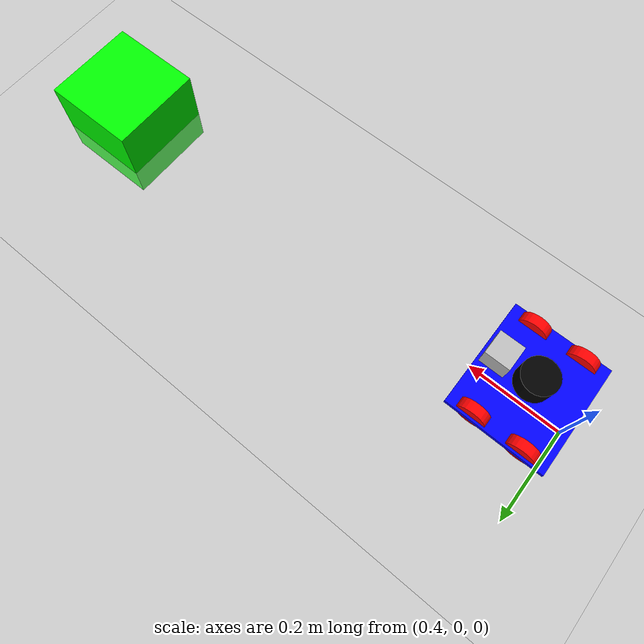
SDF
<?xml version="1.0" ?>
<sdf version="1.8">

  <!--
    Определяем мир (world) под названием "Moving_robot".
    Внутри указываем параметры физики, плагины для симуляции, освещение (sun) и объекты (models).
  -->
  <world name="Moving_robot">

    <physics name="1ms" type="ignored">
      <max_step_size>0.001</max_step_size>
      <real_time_factor>1.0</real_time_factor>
    </physics>

    <plugin filename="gz-sim-physics-system" name="gz::sim::systems::Physics"/>
    <plugin filename="gz-sim-user-commands-system" name="gz::sim::systems::UserCommands"/>
    <plugin filename="gz-sim-scene-broadcaster-system" name="gz::sim::systems::SceneBroadcaster"/>
    <plugin filename="gz-sim-sensors-system"
	    name="gz::sim::systems::Sensors">
    <render_engine>ogre2</render_engine>
    </plugin>

    <!--
      Настраиваем источник света "sun" (солнечный свет) с заданным направлением,
      интенсивностью (diffuse, specular) и другими параметрами.
    -->
    <light type="directional" name="sun">
      <cast_shadows>true</cast_shadows>
      <pose>0 0 10 0 0 0</pose>
      <diffuse>0.8 0.8 0.8 1</diffuse>
      <specular>0.2 0.2 0.2 1</specular>
      <attenuation>
        <range>1000</range>
        <constant>0.9</constant>
        <linear>0.01</linear>
        <quadratic>0.001</quadratic>
      </attenuation>
      <direction>-0.5 0.1 -0.9</direction>
    </light>

    <!--
      Создаём "землю" (ground_plane) — большая плоскость для пола.
      static=true означает, что объект не участвует в движении, он статичен.
    -->
    <model name="ground_plane">
      <static>true</static>
      <link name="link">
        <collision name="collision">
          <geometry>
            <plane>
              <normal>0 0 1</normal>
            </plane>
          </geometry>
        </collision>
        <visual name="visual">
          <geometry>
            <plane>
              <normal>0 0 1</normal>
              <size>100 100</size>
            </plane>
          </geometry>
          <material>
            <ambient>0.8 0.8 0.8 1</ambient>
            <diffuse>0.8 0.8 0.8 1</diffuse>
            <specular>0.8 0.8 0.8 1</specular>
          </material>
        </visual>
      </link>
    </model>

    <!--
      Модель робота: "my_robot". У него корневым звеном (canonical_link) выступает "chassis".
      pose relative_to='world' означает, что робот будет размещён в абсолютных координатах.
    -->
    <model name='my_robot' canonical_link='chassis'>
      <pose relative_to='world'>0 0 0 0 0 0</pose>

      <link name='chassis'>
        <pose relative_to='__model__'>0.5 0 0.1 0 0 0</pose>
        <inertial>
          <mass>3</mass>
          <inertia>
            <ixx>0.126164</ixx>
            <ixy>0</ixy>
            <ixz>0</ixz>
            <iyy>0.416519</iyy>
            <iyz>0</iyz>
            <izz>0.481014</izz>
          </inertia>
        </inertial>
        <visual name='visual'>
          <geometry>
            <box>
              <size>0.2 0.23 0.01</size>
            </box>
          </geometry>
          <material>
            <ambient>0.0 0.0 1.0 1</ambient>
            <diffuse>0.0 0.0 1.0 1</diffuse>
            <specular>0.0 0.0 1.0 1</specular>
          </material>
        </visual>
        <collision name='collision'>
          <!-- collision важна для реакций физики (сталкивание с объектами) -->
          <geometry>
            <box>
              <size>0.2 0.16 0.01</size>
            </box>
          </geometry>
        </collision>
      </link>

      <link name='left_wheel'>
        <pose relative_to="chassis">0.05 0.10 0 -1.5707 0 0</pose>
        <inertial>
          <mass>0.2</mass>
          <inertia>
            <ixx>0.145833</ixx>
            <ixy>0</ixy>
            <ixz>0</ixz>
            <iyy>0.145833</iyy>
            <iyz>0</iyz>
            <izz>0.125</izz>
          </inertia>
        </inertial>
        <visual name='visual'>
          <geometry>
            <cylinder>
              <radius>0.03</radius>
              <length>0.02</length>
            </cylinder>
          </geometry>
          <material>
            <ambient>1.0 0.0 0.0 1</ambient>
            <diffuse>1.0 0.0 0.0 1</diffuse>
            <specular>1.0 0.0 0.0 1</specular>
          </material>
        </visual>
        <collision name='collision'>
          <geometry>
            <cylinder>
              <radius>0.03</radius>
              <length>0.02</length>
            </cylinder>
          </geometry>
        </collision>
      </link>

      <link name='left_wheel_b'>
        <pose relative_to="chassis">-0.05 0.10 0 -1.5707 0 0</pose>
        <inertial>
          <mass>0.2</mass>
          <inertia>
            <ixx>0.145833</ixx>
            <ixy>0</ixy>
            <ixz>0</ixz>
            <iyy>0.145833</iyy>
            <iyz>0</iyz>
            <izz>0.125</izz>
          </inertia>
        </inertial>
        <visual name='visual'>
          <geometry>
            <cylinder>
              <radius>0.03</radius>
              <length>0.02</length>
            </cylinder>
          </geometry>
          <material>
            <ambient>1.0 0.0 0.0 1</ambient>
            <diffuse>1.0 0.0 0.0 1</diffuse>
            <specular>1.0 0.0 0.0 1</specular>
          </material>
        </visual>
        <collision name='collision'>
          <geometry>
            <cylinder>
              <radius>0.03</radius>
              <length>0.02</length>
            </cylinder>
          </geometry>
        </collision>
      </link>

      <!--
        Правое колесо (right_wheel).
        Аналогично левому, только y=-0.10.
      -->
      <link name='right_wheel'>
        <pose relative_to="chassis">0.05 -0.10 0 -1.5707 0 0</pose>
        <inertial>
          <mass>0.2</mass>
          <inertia>
            <ixx>0.145833</ixx>
            <ixy>0</ixy>
            <ixz>0</ixz>
            <iyy>0.145833</iyy>
            <iyz>0</iyz>
            <izz>0.125</izz>
          </inertia>
        </inertial>
        <visual name='visual'>
          <geometry>
            <cylinder>
              <radius>0.03</radius>
              <length>0.02</length>
            </cylinder>
          </geometry>
          <material>
            <ambient>1.0 0.0 0.0 1</ambient>
            <diffuse>1.0 0.0 0.0 1</diffuse>
            <specular>1.0 0.0 0.0 1</specular>
          </material>
        </visual>
        <collision name='collision'>
          <geometry>
            <cylinder>
              <radius>0.03</radius>
              <length>0.02</length>
            </cylinder>
          </geometry>
        </collision>
      </link>

      <!--
        Правое колесо (right_wheel).
        Аналогично левому, только y=-0.10.
      -->
      <link name='right_wheel_b'>
        <pose relative_to="chassis">-0.05 -0.10 0 -1.5707 0 0</pose>
        <inertial>
          <mass>0.2</mass>
          <inertia>
            <ixx>0.145833</ixx>
            <ixy>0</ixy>
            <ixz>0</ixz>
            <iyy>0.145833</iyy>
            <iyz>0</iyz>
            <izz>0.125</izz>
          </inertia>
        </inertial>
        <visual name='visual'>
          <geometry>
            <cylinder>
              <radius>0.03</radius>
              <length>0.02</length>
            </cylinder>
          </geometry>
          <material>
            <ambient>1.0 0.0 0.0 1</ambient>
            <diffuse>1.0 0.0 0.0 1</diffuse>
            <specular>1.0 0.0 0.0 1</specular>
          </material>
        </visual>
        <collision name='collision'>
          <geometry>
            <cylinder>
              <radius>0.03</radius>
              <length>0.02</length>
            </cylinder>
          </geometry>
        </collision>
      </link>

            <!--
        lidar_link - цилиндр, имитирующий 2D-лидар.
        Расположен на +0.04 над floor2.
      -->
    <link name="lidar_link">
        <pose relative_to="chassis">0 0 0.05 0 0 0</pose>
        <inertial>
          <mass>0.2</mass>
          <inertia>
            <ixx>0.001</ixx>
            <ixy>0</ixy>
            <ixz>0</ixz>
            <iyy>0.001</iyy>
            <iyz>0</iyz>
            <izz>0.001</izz>
          </inertia>
        </inertial>
        <visual name="lidar_visual">
          <geometry>
            <cylinder>
              <radius>0.035</radius>
              <length>0.05</length>
            </cylinder>
          </geometry>
          <material>
            <ambient>0 0 0 1</ambient>
            <diffuse>0 0 0 1</diffuse>
          </material>
        </visual>
		<sensor name="lidar_sensor" type="gpu_ray">
		  <frame_id>lidar_link</frame_id>
		  <pose>0 0 0 0 0 0</pose>
		  <topic>/lidar</topic>
		  <update_rate>1</update_rate>
		  <ray>
			<scan>
			  <horizontal>
				<samples>36</samples>
				<resolution>1</resolution>
				<min_angle>-1.5708</min_angle>
				<max_angle>1.5708</max_angle>
			  </horizontal>
			  <vertical>
				<samples>1</samples>
				<resolution>0.01</resolution>
				<min_angle>0</min_angle>
				<max_angle>0</max_angle>
			  </vertical>
			</scan>
			<range>
			  <min>0.08</min>
			  <max>2.0</max>
			  <resolution>0.01</resolution>
			</range>
			<noise>
			  <type>gaussian</type>
			  <mean>0.0</mean>
			  <stddev>0.01</stddev>
			</noise>
		  </ray>
		  <always_on>true</always_on>
		  <visualize>true</visualize>
		</sensor>
        <collision name="lidar_collision">
          <geometry>
            <cylinder>
              <radius>0.035</radius>
              <length>0.05</length>
            </cylinder>
          </geometry>
        </collision>
      </link>
      <joint name="lidar_joint" type="fixed">
        <parent>chassis</parent>
        <child>lidar_link</child>
      </joint>

      <!--
        Ось вращения левого колеса (left_wheel_joint) - revolute.
        joint подключает parent=chassis, child=left_wheel.
      -->
      <joint name='left_wheel_joint' type='revolute'>
        <pose relative_to='left_wheel'/>
        <parent>chassis</parent>
        <child>left_wheel</child>
        <axis>
          <xyz expressed_in='__model__'>0 1 0</xyz>
          <limit>
            <lower>-1.79769e+308</lower>
            <upper>1.79769e+308</upper>
          </limit>
        </axis>
      </joint>

      <!--
        Ось вращения левого колеса (left_wheel_joint) - revolute.
        joint подключает parent=chassis, child=left_wheel.
      -->
      <joint name='left_wheel_b_joint' type='revolute'>
        <pose relative_to='left_wheel_b'/>
        <parent>chassis</parent>
        <child>left_wheel_b</child>
        <axis>
          <xyz expressed_in='__model__'>0 1 0</xyz>
          <limit>
            <lower>-1.79769e+308</lower>
            <upper>1.79769e+308</upper>
          </limit>
        </axis>
      </joint>

      <!--
        Аналогично для правого колеса (right_wheel_joint).
      -->
      <joint name='right_wheel_joint' type='revolute'>
        <pose relative_to='right_wheel'/>
        <parent>chassis</parent>
        <child>right_wheel</child>
        <axis>
          <xyz expressed_in='__model__'>0 1 0</xyz>
          <limit>
            <lower>-1.79769e+308</lower>
            <upper>1.79769e+308</upper>
          </limit>
        </axis>
      </joint>

      <!--
        Аналогично для правого колеса (right_wheel_joint).
      -->
      <joint name='right_wheel_b_joint' type='revolute'>
        <pose relative_to='right_wheel_b'/>
        <parent>chassis</parent>
        <child>right_wheel_b</child>
        <axis>
          <xyz expressed_in='__model__'>0 1 0</xyz>
          <limit>
            <lower>-1.79769e+308</lower>
            <upper>1.79769e+308</upper>
          </limit>
        </axis>
</joint>
      <link name="camera_link">
        <pose relative_to='chassis'>0.07 0 0.05 0 0 0</pose>
        <visual name='camera_visual'>
          <geometry>
            <box>
             <size>0.05 0.05 0.05</size>
            </box>
          </geometry>
        </visual>

	<sensor name="camera" type="camera">
		<topic>/camera</topic>
          <camera>
            <horizontal_fov>1.5708</horizontal_fov>
            <image>
              <width>800</width>
              <height>600</height>
            </image>
          </camera>
        </sensor>
      </link>

      <joint name="camera_joint" type="fixed">
        <parent>chassis</parent>
        <child>camera_link</child>
      </joint>

      <plugin filename="gz-sim-diff-drive-system" name="gz::sim::systems::DiffDrive">
	<left_joint>left_wheel_joint</left_joint>
	<right_joint>right_wheel_joint</right_joint>
        <wheel_separation>0.19</wheel_separation>
        <wheel_radius>0.032</wheel_radius>
        <odom_publish_frequency>1</odom_publish_frequency>
        <topic>cmd_vel</topic>
      </plugin>
    </model>

    <!--
      "green_cube" — зелёный кубик, размером 50x50x50 мм (0.05 м),
      располагается на x=1.5 (чуть впереди робота).
    -->
    <model name="green_cube">
      <pose>1.5 0 0.025 0 0 0</pose>
      <link name="cube_link">
        <inertial>
          <mass>0.2</mass>
          <inertia>
            <ixx>1e-4</ixx>
            <ixy>0</ixy>
            <ixz>0</ixz>
            <iyy>1e-4</iyy>
            <iyz>0</iyz>
            <izz>1e-4</izz>
          </inertia>
        </inertial>
        <visual name="visual">
          <geometry>
            <box>
              <size>0.2 0.2 0.2</size>
            </box>
          </geometry>
          <material>
            <ambient>0 1 0 1</ambient>
            <diffuse>0 1 0 1</diffuse>
            <specular>0 1 0 1</specular>
          </material>
        </visual>
        <collision name="collision">
          <geometry>
            <box>
              <size>0.2 0.2 0.2</size>
            </box>
          </geometry>
        </collision>
      </link>
    </model>

    <!--
      Плагины для движения робота с клавиатуры (TriggeredPublisher).
      При нажатии определённых клавиш (16777234, 16777235 и т.д.)
      публикуется Twist на топик /cmd_vel.
    -->
    <!-- Moving Left-->
    <plugin filename="gz-sim-triggered-publisher-system" name="gz::sim::systems::TriggeredPublisher">
      <input type="gz.msgs.Int32" topic="/keyboard/keypress">
        <match field="data">16777234</match>
      </input>
      <output type="gz.msgs.Twist" topic="/cmd_vel">
        linear: {x: 0.0}, angular: {z: 0.5}
      </output>
    </plugin>

    <!-- Moving Forward-->
    <plugin filename="gz-sim-triggered-publisher-system" name="gz::sim::systems::TriggeredPublisher">
      <input type="gz.msgs.Int32" topic="/keyboard/keypress">
        <match field="data">16777235</match>
      </input>
      <output type="gz.msgs.Twist" topic="/cmd_vel">
        linear: {x: 0.5}, angular: {z: 0.0}
      </output>
    </plugin>

    <!-- Moving Right-->
    <plugin filename="gz-sim-triggered-publisher-system" name="gz::sim::systems::TriggeredPublisher">
      <input type="gz.msgs.Int32" topic="/keyboard/keypress">
        <match field="data">16777236</match>
      </input>
      <output type="gz.msgs.Twist" topic="/cmd_vel">
        linear: {x: 0.0}, angular: {z: -0.5}
      </output>
    </plugin>

    <!-- Moving Backward-->
    <plugin filename="gz-sim-triggered-publisher-system" name="gz::sim::systems::TriggeredPublisher">
      <input type="gz.msgs.Int32" topic="/keyboard/keypress">
        <match field="data">16777237</match>
      </input>
      <output type="gz.msgs.Twist" topic="/cmd_vel">
        linear: {x: -0.5}, angular: {z: 0.0}
      </output>
    </plugin>

  </world>
</sdf>
